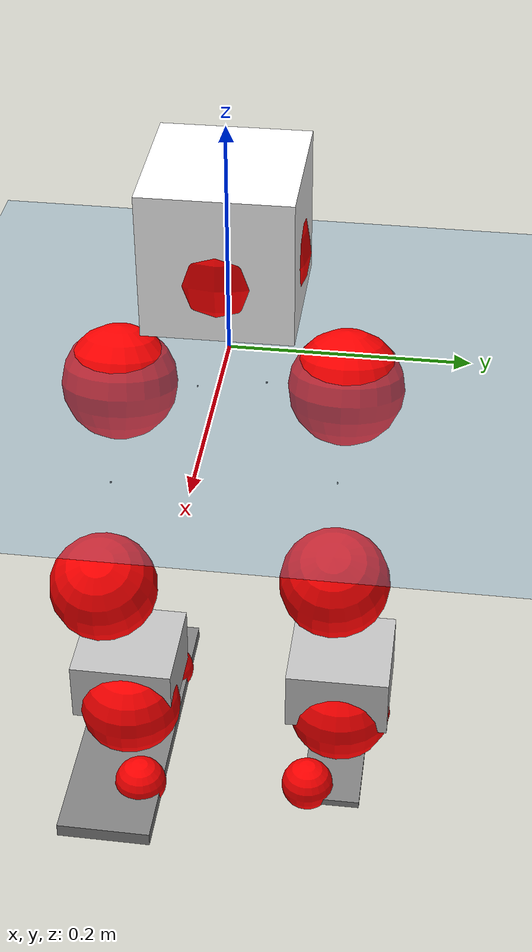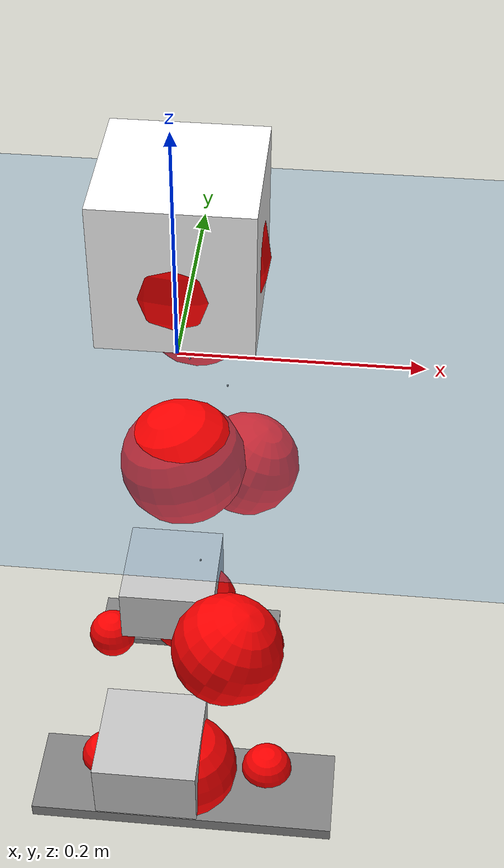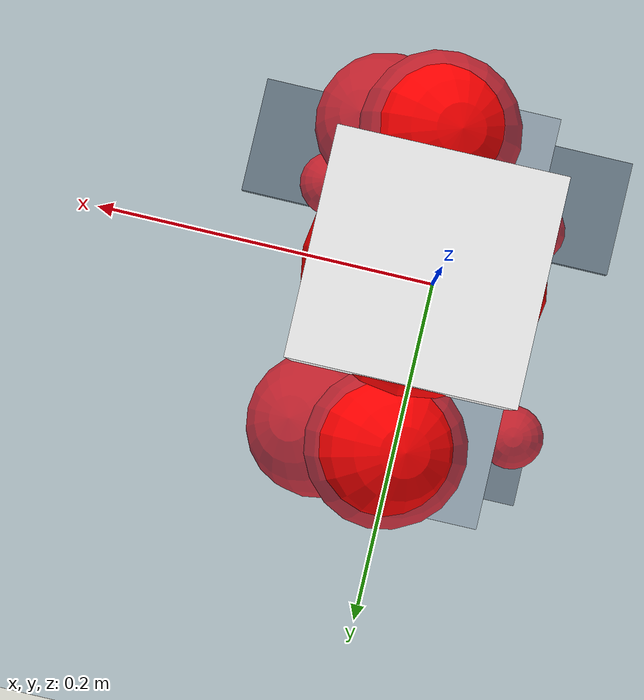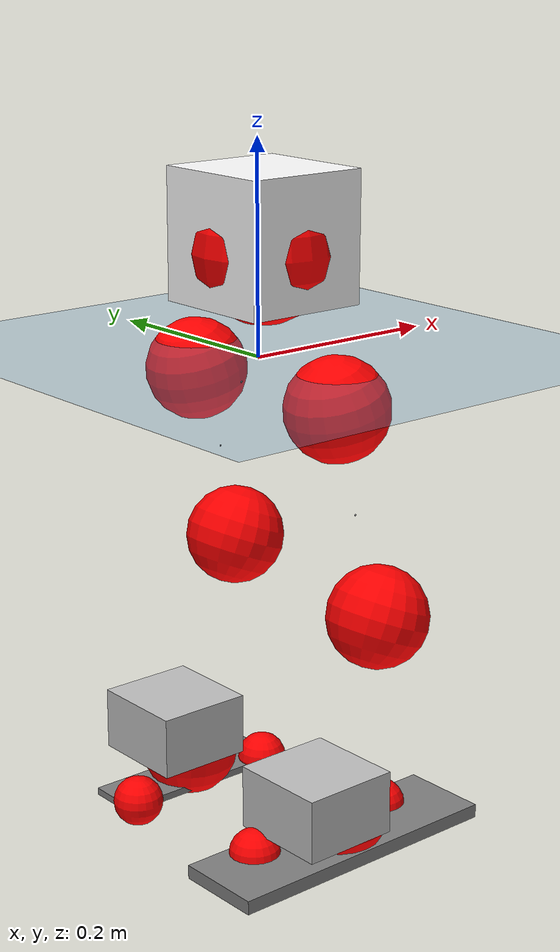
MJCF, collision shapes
<mujoco model="pi_12dof_release_v1">
  <compiler angle="radian" assetdir="assets" balanceinertia="true" inertiafromgeom="false"/>

  <option timestep="0.005" density="1.2" viscosity="2e-05"/>

  <size nkey="1"/>

  <visual>
    <quality shadowsize="8192"/>
    <map shadowclip="0.5"/>
  </visual>

  <default>
    <default class="/">
      <joint armature="0.01" damping="0.01" frictionloss="0.01"/>
      <geom contype="0" conaffinity="0" group="1" solref="-1000 -80"/>
      <site size="0.01 0.005 0.005" group="5"/>
      <general forcelimited="true" biastype="affine" gainprm="20" biasprm="0 -20 -0.5"/>
      <default class="foot">
        <geom size="0.0845 0.036 0.005" type="box" condim="6" group="4" priority="1" friction="0.9 0.2 0.2" solimp="0.015 1 0.005"/>
      </default>
      <default class="reward_collision_sphere">
        <geom group="5" rgba="1 0 0 1"/>
      </default>
    </default>
  </default>

  <asset>
    <texture type="skybox" colorspace="auto" name="//unnamed_texture_0" builtin="gradient" rgb1="0.95 0.95 0.95" rgb2="0.95 0.95 0.95" width="100" height="600"/>
    <texture type="2d" colorspace="auto" name="texplane" builtin="checker" rgb1="0.345 0.575 0.748" rgb2="0.345 0.575 0.748" markrgb="1 1 1" width="512" height="512"/>
    <material name="MatPlane" class="/" texture="texplane" texuniform="true" texrepeat="2 2" specular="0.9"/>
    <mesh name="baselink_1" class="/" file="baselink_1.STL"/>
    <mesh name="r_hip_pitch_link" class="/" file="r_hip_pitch_link.STL"/>
    <mesh name="r_hip_roll_link" class="/" file="r_hip_roll_link.STL"/>
    <mesh name="r_thigh_link" class="/" file="r_thigh_link.STL"/>
    <mesh name="r_calf_link" class="/" file="r_calf_link.STL"/>
    <mesh name="r_ankle_pitch_link" class="/" file="r_ankle_pitch_link.STL"/>
    <mesh name="r_ankle_roll_link" class="/" file="r_ankle_roll_link.STL"/>
    <mesh name="l_hip_pitch_link" class="/" file="l_hip_pitch_link.STL"/>
    <mesh name="l_hip_roll_link" class="/" file="l_hip_roll_link.STL"/>
    <mesh name="l_thigh_link" class="/" file="l_thigh_link.STL"/>
    <mesh name="l_calf_link" class="/" file="l_calf_link.STL"/>
    <mesh name="l_ankle_pitch_link" class="/" file="l_ankle_pitch_link.STL"/>
    <mesh name="l_ankle_roll_link" class="/" file="l_ankle_roll_link.STL"/>
  </asset>

  <worldbody>
    <geom name="floor" class="/" size="100 100 0.125" type="plane" group="0" material="MatPlane"/>
    <light name="toplight_shadow" class="/" pos="0 0 5" dir="0.0990148 0.0990148 -0.990148" type="directional" ambient="0.04 0.04 0.04" diffuse="0.55 0.55 0.55" specular="0.12 0.12 0.12"/>
    <light name="toplight_fill" class="/" pos="0 0 5" dir="0.0990148 0.0990148 -0.990148" type="directional" castshadow="false" ambient="0.04 0.04 0.04" diffuse="0.3 0.3 0.3" specular="0.08 0.08 0.08"/>
    <body name="trunk" pos="0.00655033 0.000665664 0.00402162" quat="0.999996 0.0016432 0.00106491 0.00196641">
      <inertial pos="0.00708632 -0.00475303 0.056381" quat="0.718946 -0.00997573 0.0170441 0.694786" mass="4.02263" diaginertia="0.0183183 0.0197869 0.0150176"/>
      <joint name="//unnamed_joint_0" type="free"/>
      <geom name="//unnamed_geom_1" class="/" type="mesh" density="0" rgba="1 1 1 1" mesh="baselink_1"/>
      <geom name="//unnamed_geom_2" class="/" size="0.0613761 0.0613761 0.0613761" pos="0 0 0.107137" type="box" rgba="1 1 1 1"/>
      <geom name="//unnamed_geom_3" class="reward_collision_sphere" size="0.0675137" pos="0 0 0.0937452"/>
      <site name="imu" class="/" pos="-0.0230443 0.0587086 0.0111553" size="0.0122752"/>
      <camera name="track" class="/" pos="0 -2.34228 0" quat="0.707107 0.707107 0 0" mode="trackcom"/>
      <camera name="ego_camera" class="/" pos="0.0879156 0 0.241059" quat="-0.5 -0.5 0.5 0.5"/>
      <body name="r_hip_pitch_link" pos="0.00329013 -0.0269933 -0.039892" quat="0.991798 -0.0047669 -0.127723 8.38724e-05">
        <inertial pos="0.00518534 -0.0652248 0.00129646" quat="-0.0131407 0.727158 -0.0137466 0.686207" mass="0.60158" diaginertia="0.000209216 0.000191417 0.000296954"/>
        <joint name="r_hip_pitch_joint" class="/" pos="0 0 0" axis="0.000871587 -0.999907 -0.0136045" stiffness="0.0460981" range="-1.70317 1.28721" armature="0.015001" damping="0.0271017" frictionloss="0.0115361"/>
        <geom name="//unnamed_geom_4" class="/" type="mesh" density="0" rgba="0.75294 0.75294 0.75294 1" mesh="r_hip_pitch_link"/>
        <geom name="//unnamed_geom_5" class="/" size="0.000613761 0.000613761 0.000613761" type="box" rgba="0.75294 0.75294 0.75294 1"/>
        <body name="r_hip_roll_link" pos="0.00600884 -0.0651984 0.00107774" quat="0.999999 0.000263528 0.000230514 -0.00107577">
          <inertial pos="-0.00174097 0.0100535 -0.0697051" quat="0.706998 -0.0804798 -0.076281 0.698468" mass="0.73162" diaginertia="0.000757959 0.000660936 0.000565031"/>
          <joint name="r_hip_roll_joint" class="/" pos="0 0 0" axis="-0.999456 -0.0304029 -0.0127704" stiffness="0.0232479" range="-0.0897421 0.30488" armature="0.0109161" damping="0.0161262" frictionloss="0.0133731"/>
          <geom name="//unnamed_geom_6" class="/" type="mesh" density="0" rgba="0.75294 0.75294 0.75294 1" mesh="r_hip_roll_link"/>
          <geom name="//unnamed_geom_7" class="/" size="0.000613761 0.000613761 0.000613761" type="box" rgba="0.75294 0.75294 0.75294 1"/>
          <geom name="//unnamed_geom_8" class="reward_collision_sphere" size="0.0491009"/>
          <body name="r_thigh_link" pos="-0.0121206 -0.0105001 -0.0990712" quat="1 0.000111381 0.000495803 0.000300907">
            <inertial pos="0.00167536 0.00599149 -0.0698124" quat="0.738971 0.673737 0.000341199 0.000250951" mass="0.187078" diaginertia="0.000260438 0.000214339 0.000256246"/>
            <joint name="r_thigh_joint" class="/" pos="0 0 0" axis="0.0207953 -0.01876 -0.999608" range="-0.327987 0.532473" armature="0.0123129" damping="0.0360924" frictionloss="0.0195256"/>
            <geom name="//unnamed_geom_9" class="/" type="mesh" density="0" rgba="0.75294 0.75294 0.75294 1" mesh="r_thigh_link"/>
            <geom name="//unnamed_geom_10" class="/" size="0.000613761 0.000613761 0.000613761" type="box" rgba="0.75294 0.75294 0.75294 1"/>
            <body name="r_calf_link" pos="-0.00359503 -0.00710255 -0.104385" quat="0.947642 -0.000111542 0.319334 7.67053e-05">
              <inertial pos="0.000543956 0.00481325 -0.0929093" quat="0.998881 0.03097 -0.0354452 0.00453646" mass="1.29983" diaginertia="0.00714531 0.00647041 0.000655812"/>
              <joint name="r_calf_joint" class="/" pos="0 0 0" axis="1.58502e-05 -1 5.54461e-05" stiffness="0.0460486" range="-1.84322 0.658908" armature="0.0172218" damping="0.0100946" frictionloss="0.0112003"/>
              <geom name="//unnamed_geom_11" class="/" type="mesh" density="0" rgba="0.75294 0.75294 0.75294 1" mesh="r_calf_link"/>
              <geom name="//unnamed_geom_12" class="/" size="0.000613761 0.000613761 0.000613761" type="box" rgba="0.75294 0.75294 0.75294 1"/>
              <geom name="//unnamed_geom_13" class="reward_collision_sphere" size="0.0491009"/>
              <body name="r_ankle_pitch_link" pos="-0.00360343 0.00273235 -0.179604" quat="0.979942 -0.000314663 -0.199281 -0.000349624">
                <inertial pos="0.00335826 0.00421261 0.0104611" quat="0.018795 0.717681 -0.0573791 0.69375" mass="0.278375" diaginertia="0.000625815 0.000424493 0.000448276"/>
                <joint name="r_ankle_pitch_joint" class="/" pos="0 0 0" axis="0.00752757 -0.999931 -0.00898577" range="-1.28198 0.277598" armature="0.0120871" damping="0.00567345" frictionloss="0.006872"/>
                <geom name="//unnamed_geom_14" class="/" type="mesh" density="0" rgba="0.75294 0.75294 0.75294 1" mesh="r_ankle_pitch_link"/>
                <geom name="//unnamed_geom_15" class="/" size="0.0478733 0.0491009 0.030688" type="box" rgba="0.75294 0.75294 0.75294 1"/>
                <body name="r_ankle_roll_link" pos="0.0901037 0.00561653 0.00330809" quat="1 -0.000405977 -5.21805e-05 -0.000836683">
                  <inertial pos="-0.0282044 0.00245841 -0.0314658" quat="0.577034 0.427294 0.421294 0.554043" mass="1.20611" diaginertia="0.00277933 0.00223805 0.00157117"/>
                  <joint name="r_ankle_roll_joint" class="/" pos="0 0 0" axis="-0.998872 0.0446226 0.0162196" range="-0.270215 0.328318" armature="0.018923" damping="0" frictionloss="0.0150833"/>
                  <geom name="//unnamed_geom_16" class="/" type="mesh" density="0" rgba="0.75294 0.75294 0.75294 1" mesh="r_ankle_roll_link"/>
                  <geom name="//unnamed_geom_17" class="/" type="mesh" rgba="0.75294 0.75294 0.75294 1" mesh="r_ankle_roll_link"/>
                  <geom name="right_foot" class="foot" size="0.143332 0.0437502 0.00672893" pos="-0.0597826 0 -0.0589256"/>
                  <geom name="//unnamed_geom_19" class="reward_collision_sphere" size="0.0491009" pos="-0.0586104 0 -0.0267843"/>
                  <geom name="//unnamed_geom_20" class="reward_collision_sphere" size="0.0245504" pos="0.0175831 0.0234228 -0.0535687"/>
                  <geom name="//unnamed_geom_21" class="reward_collision_sphere" size="0.0245504" pos="-0.140665 0.0234228 -0.0535687"/>
                  <site name="right_foot" class="foot" pos="-0.0597826 0 -0.0589256" size="0.0122752"/>
                </body>
              </body>
            </body>
          </body>
        </body>
      </body>
      <body name="l_hip_pitch_link" pos="-0.000672019 0.0310344 -0.0343618" quat="0.992317 0.000633067 -0.123723 -2.04551e-05">
        <inertial pos="0.000993402 0.0618563 0.00921291" quat="-0.0351854 0.704386 0.028823 0.708359" mass="0.626829" diaginertia="0.00025002 0.00024597 0.000436382"/>
        <joint name="l_hip_pitch_joint" class="/" pos="0 0 0" axis="0.00854816 0.999702 -0.0228557" range="-1.38627 1.78413" armature="0.00761991" damping="0.0248888" frictionloss="0.0119413"/>
        <geom name="//unnamed_geom_22" class="/" type="mesh" density="0" rgba="0.75294 0.75294 0.75294 1" mesh="l_hip_pitch_link"/>
        <geom name="//unnamed_geom_23" class="/" size="0.000613761 0.000613761 0.000613761" type="box" rgba="0.75294 0.75294 0.75294 1"/>
        <body name="l_hip_roll_link" pos="-0.000575933 0.067177 0.000685984" quat="0.999999 -0.000393466 -0.000176451 -0.000973603">
          <inertial pos="0.00675672 0.00100572 -0.0698214" quat="0.672444 -0.106367 -0.0806309 0.728014" mass="0.690798" diaginertia="0.000800718 0.00060208 0.000597221"/>
          <joint name="l_hip_roll_joint" class="/" pos="0 0 0" axis="-0.999991 0.00131851 0.0041478" range="-0.297132 -0.0333477" armature="0.0150911" damping="0.0626022" frictionloss="0.0124502"/>
          <geom name="//unnamed_geom_24" class="/" type="mesh" density="0" rgba="0.75294 0.75294 0.75294 1" mesh="l_hip_roll_link"/>
          <geom name="//unnamed_geom_25" class="/" size="0.000613761 0.000613761 0.000613761" type="box" rgba="0.75294 0.75294 0.75294 1"/>
          <geom name="//unnamed_geom_26" class="reward_collision_sphere" size="0.0491009"/>
          <body name="l_thigh_link" pos="0.00512663 -0.0031786 -0.0856479" quat="1 -0.000723993 0.000124397 0.000277525">
            <inertial pos="-0.00478813 0.0038066 -0.0696088" quat="0.688109 0.724791 0.01105 0.0326044" mass="0.229704" diaginertia="0.000277898 0.000204101 0.00025926"/>
            <joint name="l_thigh_joint" class="/" pos="0 0 0" axis="-0.000263329 -0.00472628 -0.999989" stiffness="0.0546832" range="-0.580086 0.386043" armature="0.0124926" damping="0" frictionloss="0.0117247"/>
            <geom name="//unnamed_geom_27" class="/" type="mesh" density="0" rgba="0.75294 0.75294 0.75294 1" mesh="l_thigh_link"/>
            <geom name="//unnamed_geom_28" class="/" size="0.000613761 0.000613761 0.000613761" type="box" rgba="0.75294 0.75294 0.75294 1"/>
            <body name="l_calf_link" pos="-0.00512849 0.00128886 -0.0976861" quat="0.947953 0.000695947 0.31841 0.000433932">
              <inertial pos="0.0010284 -0.00473517 -0.0869315" quat="0.999978 0.00269886 -0.00092039 0.00591853" mass="1.64495" diaginertia="0.00884051 0.00878109 0.000852509"/>
              <joint name="l_calf_joint" class="/" pos="0 0 0" axis="0.00205231 0.999977 0.00652435" stiffness="0.00793774" range="-0.877368 1.46139" armature="0.0119838" damping="0.00255134" frictionloss="0.0110887"/>
              <geom name="//unnamed_geom_29" class="/" type="mesh" density="0" rgba="0.75294 0.75294 0.75294 1" mesh="l_calf_link"/>
              <geom name="//unnamed_geom_30" class="/" size="0.000613761 0.000613761 0.000613761" type="box" rgba="0.75294 0.75294 0.75294 1"/>
              <geom name="//unnamed_geom_31" class="reward_collision_sphere" size="0.0491009"/>
              <body name="l_ankle_pitch_link" pos="-0.000216311 0.00181081 -0.197919" quat="0.980099 -0.000295656 -0.198508 0.000230433">
                <inertial pos="0.0108011 -0.00754268 -0.000462367" quat="-0.00230182 0.70684 0.00256667 0.707365" mass="0.394039" diaginertia="0.000717571 0.00052959 0.000512171"/>
                <joint name="l_ankle_pitch_joint" class="/" pos="0 0 0" axis="0.00295219 0.99997 -0.00711309" range="-0.314319 1.30528" armature="0.0166118" damping="0" frictionloss="0.0120221"/>
                <geom name="//unnamed_geom_32" class="/" type="mesh" density="0" rgba="0.75294 0.75294 0.75294 1" mesh="l_ankle_pitch_link"/>
                <geom name="//unnamed_geom_33" class="/" size="0.0478733 0.0491009 0.030688" type="box" rgba="0.75294 0.75294 0.75294 1"/>
                <body name="l_ankle_roll_link" pos="0.0776766 0.00145849 -0.00615235" quat="1 -0.000222555 2.81563e-05 -6.41994e-05">
                  <inertial pos="-0.0304733 -0.00158755 -0.0207102" quat="0.561032 0.428441 0.435106 0.558896" mass="1.12235" diaginertia="0.00270142 0.00240017 0.00133767"/>
                  <joint name="l_ankle_roll_joint" class="/" pos="0 0 0" axis="-0.999968 -0.00464528 0.00647925" range="-0.191568 0.154037" armature="0.00795825" damping="0" frictionloss="0.0122635"/>
                  <geom name="//unnamed_geom_34" class="/" type="mesh" density="0" rgba="0.75294 0.75294 0.75294 1" mesh="l_ankle_roll_link"/>
                  <geom name="//unnamed_geom_35" class="/" type="mesh" rgba="0.75294 0.75294 0.75294 1" mesh="l_ankle_roll_link"/>
                  <geom name="left_foot" class="foot" size="0.0941568 0.0274389 0.00348936" pos="-0.0597826 0 -0.0589256"/>
                  <geom name="//unnamed_geom_37" class="reward_collision_sphere" size="0.0491009" pos="-0.0586104 0 -0.0267843"/>
                  <geom name="//unnamed_geom_38" class="reward_collision_sphere" size="0.0245504" pos="0.0175831 -0.0234228 -0.0535687"/>
                  <geom name="//unnamed_geom_39" class="reward_collision_sphere" size="0.0245504" pos="-0.140665 -0.0234228 -0.0535687"/>
                  <site name="left_foot" class="foot" pos="-0.0597826 0 -0.0589256" size="0.0122752"/>
                </body>
              </body>
            </body>
          </body>
        </body>
      </body>
    </body>
  </worldbody>

  <contact>
    <pair class="/" geom1="floor" geom2="right_foot" name="//unnamed_contact_1"/>
    <pair class="/" geom1="floor" geom2="left_foot" name="//unnamed_contact_0"/>
  </contact>

  <actuator>
    <general name="r_hip_pitch_joint" class="/" joint="r_hip_pitch_joint" forcerange="-26.2568 26.2568" gainprm="23.6769" biasprm="0 -23.6769 -0.699066"/>
    <general name="r_hip_roll_joint" class="/" joint="r_hip_roll_joint" forcerange="-34.5333 34.5333" gainprm="23.6769" biasprm="0 -23.6769 -0.699066"/>
    <general name="r_thigh_joint" class="/" joint="r_thigh_joint" forcerange="-21.7366 21.7366" gainprm="23.6769" biasprm="0 -23.6769 -0.699066"/>
    <general name="r_calf_joint" class="/" joint="r_calf_joint" forcerange="-27.4251 27.4251" gainprm="23.6769" biasprm="0 -23.6769 -0.699066"/>
    <general name="r_ankle_pitch_joint" class="/" joint="r_ankle_pitch_joint" forcerange="-23.516 23.516" gainprm="23.6769" biasprm="0 -23.6769 -0.699066"/>
    <general name="r_ankle_roll_joint" class="/" joint="r_ankle_roll_joint" forcerange="-21.3945 21.3945" gainprm="23.6769" biasprm="0 -23.6769 -0.699066"/>
    <general name="l_hip_pitch_joint" class="/" joint="l_hip_pitch_joint" forcerange="-26.1454 26.1454" gainprm="23.6769" biasprm="0 -23.6769 -0.699066"/>
    <general name="l_hip_roll_joint" class="/" joint="l_hip_roll_joint" forcerange="-17.6127 17.6127" gainprm="23.6769" biasprm="0 -23.6769 -0.699066"/>
    <general name="l_thigh_joint" class="/" joint="l_thigh_joint" forcerange="-35.0187 35.0187" gainprm="23.6769" biasprm="0 -23.6769 -0.699066"/>
    <general name="l_calf_joint" class="/" joint="l_calf_joint" forcerange="-27.1979 27.1979" gainprm="23.6769" biasprm="0 -23.6769 -0.699066"/>
    <general name="l_ankle_pitch_joint" class="/" joint="l_ankle_pitch_joint" forcerange="-20.7425 20.7425" gainprm="23.6769" biasprm="0 -23.6769 -0.699066"/>
    <general name="l_ankle_roll_joint" class="/" joint="l_ankle_roll_joint" forcerange="-14.0534 14.0534" gainprm="23.6769" biasprm="0 -23.6769 -0.699066"/>
  </actuator>

  <sensor>
    <gyro site="imu" name="imu_angular_velocity"/>
    <velocimeter site="imu" name="imu_linear_velocity"/>
    <framelinvel objtype="site" objname="left_foot" name="left_foot_global_linear_velocity"/>
    <framelinvel objtype="site" objname="right_foot" name="right_foot_global_linear_velocity"/>
  </sensor>

  <keyframe>
    <key name="home" qpos="0 0 0.291 1 0 0 0 0.4 0 0 -0.8 0.4 0 -0.4 0 0 0.8 -0.4 0"/>
  </keyframe>
</mujoco>
